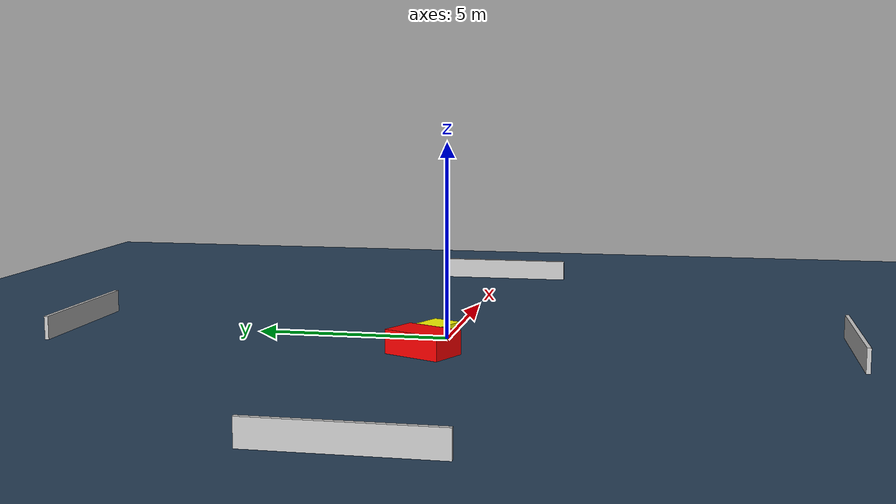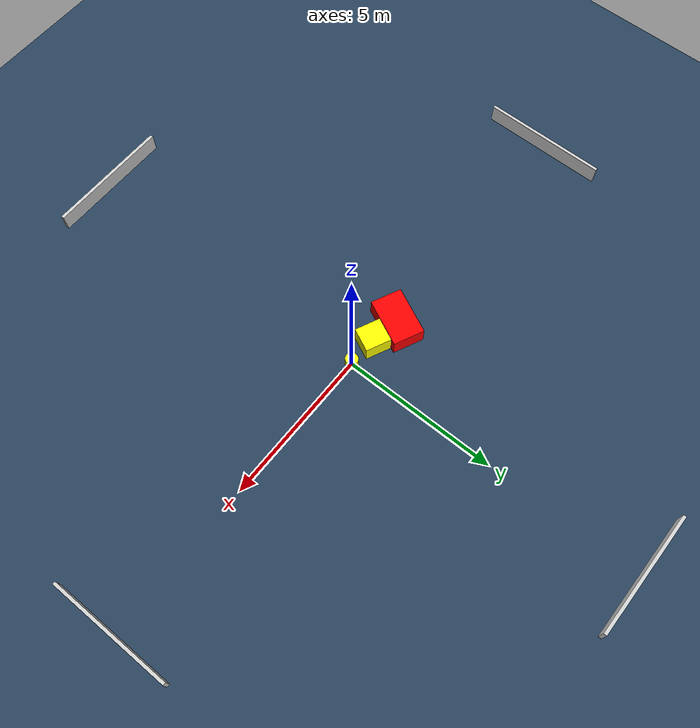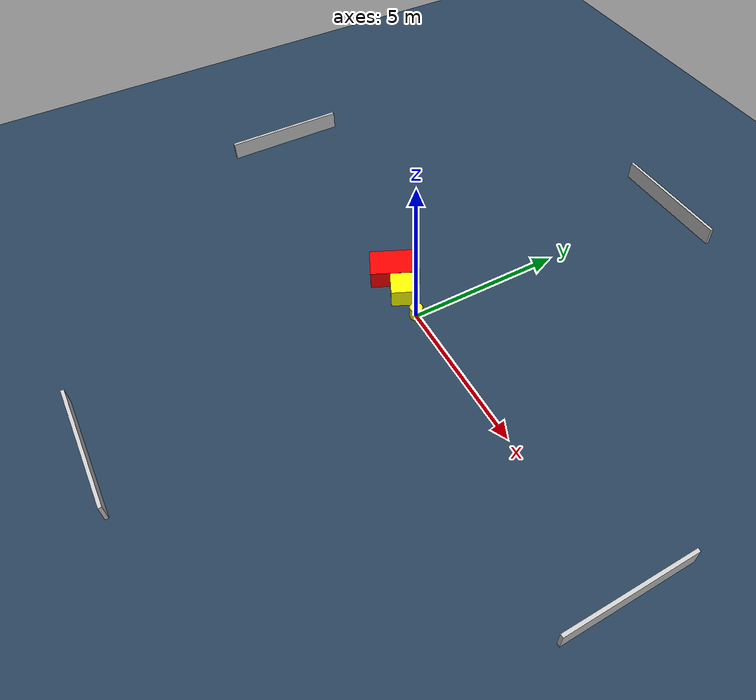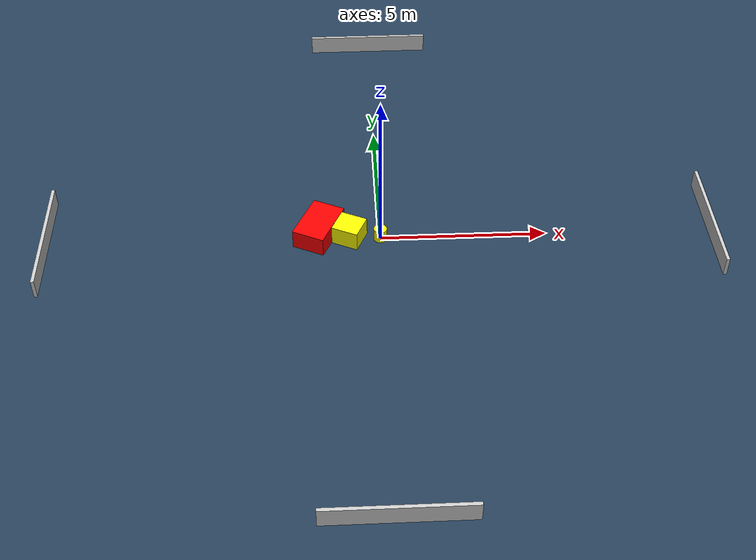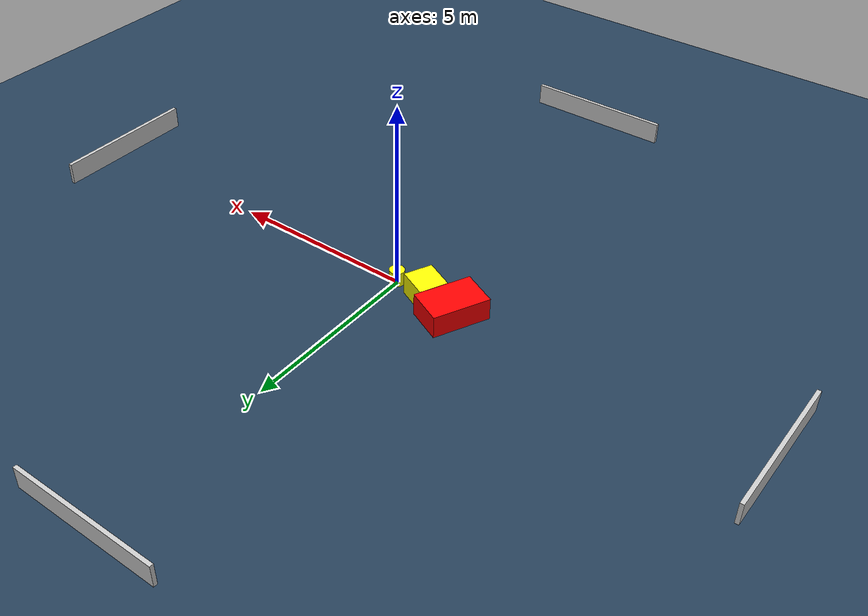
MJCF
<?xml version="1.0" ?>
<mujoco model="generated_environment">
  <option timestep="0.01" integrator="RK4" cone="elliptic"/>
  <default>
    <geom density="1"/>
  </default>
  <asset>
    <texture builtin="gradient" height="3072" name="skybox" rgb1="0.3 0.5 0.7" rgb2="0 0 0" type="skybox" width="512"/>
    <texture builtin="checker" height="300" name="groundplane" rgb1="0.2 0.3 0.4" rgb2="0.1 0.2 0.3" type="2d" width="300"/>
    <material name="groundplane" reflectance="0.2" texrepeat="5 5" texture="groundplane"/>
  </asset>
  <worldbody>
    <light dir="0 0 -1" directional="true" pos="0 0 1.5"/>
    <geom condim="3" friction="0.5 0.005 0.001" material="groundplane" name="floor" pos="0 0 0" size="0 0 0.05" type="plane"/>
    <body name="walls">
      <geom name="wall_1" condim="4" pos="-10.0 0.0 0.3" rgba="0.800000011920929 0.800000011920929 0.800000011920929 1.0" size="0.05 2.0 0.3" type="box"/>
      <geom name="wall_2" condim="4" pos="10.0 0.0 0.3" rgba="0.800000011920929 0.800000011920929 0.800000011920929 1.0" size="0.05 2.0 0.3" type="box"/>
      <geom name="wall_3" condim="4" pos="0.0 -10.0 0.3" rgba="0.800000011920929 0.800000011920929 0.800000011920929 1.0" size="2.0 0.05 0.3" type="box"/>
      <geom name="wall_4" condim="4" pos="0.0 10.0 0.3" rgba="0.800000011920929 0.800000011920929 0.800000011920929 1.0" size="2.0 0.05 0.3" type="box"/>
    </body>
    <body name="robot">
      <joint name="joint_x" type="slide" pos="0 0 0" axis="1 0 0"/>
      <joint name="joint_y" type="slide" pos="0 0 0" axis="0 1 0"/>
      <geom name="robot" type="cylinder" pos="0.0 0.0 0.2" size="0.2 0.2 0.0" mass="5.0" friction="1.0 0.005 0.0001" condim="4" rgba="1.0 1.0 0.0 1.0"/>
    </body>
    <body name="obstacle_1_movable">
      <geom name="obstacle_1_movable" condim="4" pos="-0.9296682851191506 0.056876416011864904 0.3" euler="0 0 64.96557228473846" friction="0.0 0.005 0.001" rgba="1.0 1.0 0.0 1.0" size="0.386225817201432 0.4106290692904798 0.3" type="box" mass="0.1"/>
      <joint type="free"/>
    </body>
    <body name="obstacle_2_static">
      <geom name="obstacle_2_static" condim="4" pos="-1.850337329206831 0.2496187325111711 0.3" euler="0 0 154.733504524764" friction="0.0 0.005 0.001" rgba="1.0 0.0 0.0 1.0" size="0.49760041432977037 0.7707434096073338 0.3" type="box"/>
    </body>
  </worldbody>
  <actuator>
    <motor name="actuator_x" joint="joint_x" gear="1" ctrlrange="-1 1"/>
    <motor name="actuator_y" joint="joint_y" gear="1" ctrlrange="-1 1"/>
  </actuator>
</mujoco>
